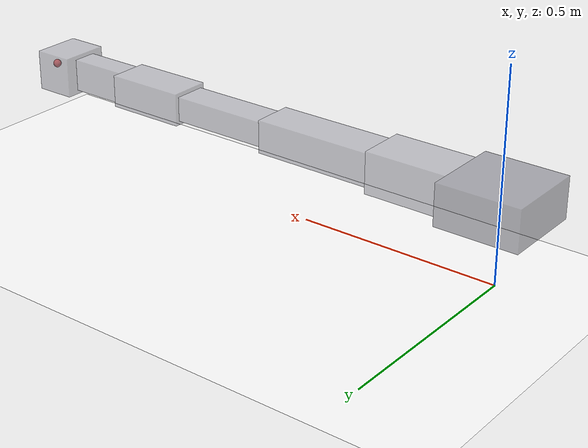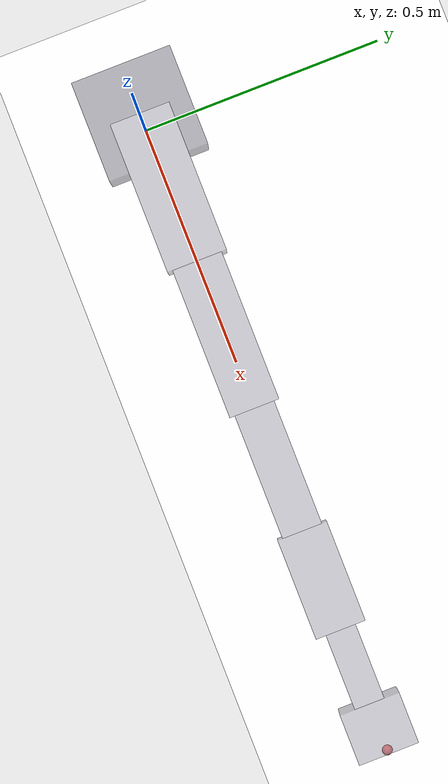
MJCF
<mujoco model="sixdof_cyl_arm">
  <!-- Use degrees for readability -->
  <compiler angle="degree" coordinate="local"/>
  <option timestep="0.002" gravity="0 0 -9.81"/>

  <default>
    <joint type="hinge" damping="0.0" armature="0.0" limited="false" range="-180 180"/>
    <!-- Cylinder axis is local Z in MuJoCo; we rotate geoms so they lie along +X (link direction) -->
    <geom type="box" rgba="0.6 0.6 0.65 0.5" density="1000" friction="0.0 0.0 0.0"/>
    <motor gear="1"/>
  </default>

  <asset>
    <texture name="grid" type="2d" builtin="checker" width="512" height="512" rgb1="0.2 0.25 0.3" rgb2="0.22 0.27 0.33"/>
    <material name="mat_floor" texture="grid" texrepeat="4 4" reflectance="0.1"/>
  </asset>

  <worldbody>
    <!-- Floor -->
    <geom name="floor" type="plane" size="5 5 0.1" material="mat_floor" rgba="1 1 1 1"/>
    <!-- Base of the manipulator -->
    <body name="base" pos="0 0 0.2">
      <!-- Optional visual for the base -->
      <geom type="box" size="0.1 0.1 0.05" rgba="0.4 0.4 0.45 0.5"/>

      <!-- Link 1 (yaw about Z) -->
      <body name="link1" pos="0 0 0">
        <joint name="j1_yaw" axis="0 0 1" range="-180 180"/>
        <!-- Box along +X: rotate 90° about Y. Half-length = 0.15 -->
        <geom name="g1" size="0.05 0.06 0.15" euler="0 90 0" pos="0.15 0 0"/>

        <!-- Link 2 (pitch about Y) at end of link1 -->
        <body name="link2" pos="0.30 0 0">
          <joint name="j2_pitch" axis="0 1 0" range="-180 180"/>
          <geom name="g2" size="0.04 0.05 0.15" euler="0 90 0" pos="0.15 0 0"/>

          <!-- Link 3 (pitch about Y); half-length = 0.125 -->
          <body name="link3" pos="0.30 0 0">
            <joint name="j3_pitch" axis="0 0 1" range="-180 180"/>
            <geom name="g3" size="0.03 0.04 0.125" euler="0 90 0" pos="0.125 0 0"/>

            <!-- Link 4 (pitch about Y); half-length = 0.10 -->
            <body name="link4" pos="0.25 0 0">
              <joint name="j4_pitch" axis="0 1 0" range="-180 180"/>
              <geom name="g4" size="0.04 0.05 0.10" euler="0 90 0" pos="0.10 0 0"/>

              <!-- Link 5 (yaw about Z); half-length = 0.075 -->
              <body name="link5" pos="0.20 0 0">
                <joint name="j5_yaw" axis="0 0 1" range="-180 180"/>
                <geom name="g5" size="0.04 0.03 0.075" euler="0 90 0" pos="0.075 0 0"/>

                <!-- Link 6 (roll about X); half-length = 0.05 -->
                <body name="link6" pos="0.15 0 0">
                  <joint name="j6_roll" axis="1 0 0" range="-180 180"/>
                  <geom name="g6" size="0.05 0.06 0.05" euler="0 90 0" pos="0.05 0 0"/>

                  <!-- End-effector site at the tip of link 6 -->
                  <site name="ee" pos="0.10 0 0" size="0.01" rgba="0.9 0.3 0.3 1"/>
                </body>
              </body>
            </body>
          </body>
        </body>
      </body>
    </body>
    <light pos="0 0 2" dir="0 0 -1" diffuse="0.8 0.8 0.8"/>
  </worldbody>

  <actuator>
    <motor name="m1" joint="j1_yaw"  gear="1" ctrlrange="-5000 5000"/>
    <motor name="m2" joint="j2_pitch" gear="1" ctrlrange="-5000 5000"/>
    <motor name="m3" joint="j3_pitch" gear="1" ctrlrange="-5000 5000"/>
    <motor name="m4" joint="j4_pitch" gear="1" ctrlrange="-5000 5000"/>
    <motor name="m5" joint="j5_yaw"  gear="1" ctrlrange="-5000 5000"/>
    <motor name="m6" joint="j6_roll" gear="1" ctrlrange="-5000 5000"/>
  </actuator>
</mujoco>
